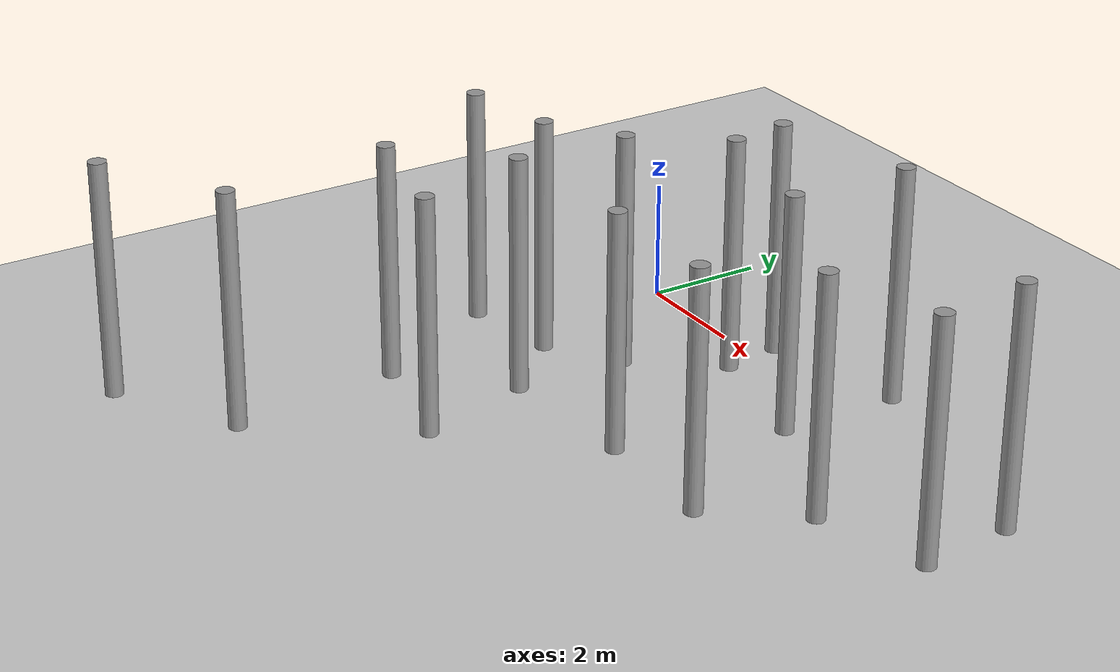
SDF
<sdf version="1.6">
 <world name="default">
  <model name="ground_plane">
   <static>1</static>
   <link name="link">
    <collision name="collision">
     <geometry><plane><normal>0 0 1</normal><size>100 100</size></plane></geometry>
     <surface><friction><ode><mu>100</mu><mu2>50</mu2></ode></friction></surface>
    </collision>
    <visual name="visual">
     <cast_shadows>0</cast_shadows>
     <geometry><plane><normal>0 0 1</normal><size>100 100</size></plane></geometry>
     <material>
      <script><uri>file://media/materials/scripts/gazebo.material</uri><name>Gazebo/Grey</name></script>
     </material>
    </visual>
   </link>
  </model>
  <model name="unit_cylinder_clone">
   <link name="link">
    <inertial>
     <mass>1000</mass>
     <inertia><ixx>145.833</ixx><ixy>0</ixy><ixz>0</ixz><iyy>145.833</iyy><iyz>0</iyz><izz>125</izz></inertia>
    </inertial>
    <visual name="visual">
     <geometry><cylinder><radius>0.15</radius><length>4</length></cylinder></geometry>
     <material>
      <script><name>Gazebo/Grey</name><uri>file://media/materials/scripts/gazebo.material</uri></script>
      <shader type="pixel"><normal_map>__default__</normal_map></shader>
      <ambient>0.3 0.3 0.3 1</ambient>
      <diffuse>0.7 0.7 0.7 1</diffuse>
      <specular>0.01 0.01 0.01 1</specular>
      <emissive>0 0 0 1</emissive>
     </material>
    </visual>
    <collision name="collision">
     <geometry><cylinder><radius>0.15</radius><length>4</length></cylinder></geometry>
     <surface>
      <friction>
       <ode><mu>1</mu><mu2>1</mu2><fdir1>0 0 0</fdir1><slip1>0</slip1><slip2>0</slip2></ode>
       <torsional>
        <coefficient>1</coefficient>
        <patch_radius>0</patch_radius>
        <surface_radius>0</surface_radius>
        <use_patch_radius>1</use_patch_radius>
        <ode><slip>0</slip></ode>
       </torsional>
      </friction>
      <bounce><restitution_coefficient>0</restitution_coefficient><threshold>1e+06</threshold></bounce>
      <contact>
       <collide_without_contact>0</collide_without_contact>
       <collide_without_contact_bitmask>1</collide_without_contact_bitmask>
       <collide_bitmask>1</collide_bitmask>
       <ode>
        <soft_cfm>0</soft_cfm>
        <soft_erp>0.2</soft_erp>
        <kp>1e+13</kp>
        <kd>1</kd>
        <max_vel>0.01</max_vel>
        <min_depth>0</min_depth>
       </ode>
       <bullet>
        <split_impulse>1</split_impulse>
        <split_impulse_penetration_threshold>-0.01</split_impulse_penetration_threshold>
        <soft_cfm>0</soft_cfm>
        <soft_erp>0.2</soft_erp>
        <kp>1e+13</kp>
        <kd>1</kd>
       </bullet>
      </contact>
     </surface>
    </collision>
   </link>
   <static>0</static>
   <pose>2.79096 0.434784 2 0 -0 0.001323</pose>
  </model>
  <model name="unit_cylinder_clone_26">
   <link name="link">
    <inertial>
     <mass>1000</mass>
     <inertia><ixx>145.833</ixx><ixy>0</ixy><ixz>0</ixz><iyy>145.833</iyy><iyz>0</iyz><izz>125</izz></inertia>
    </inertial>
    <visual name="visual">
     <geometry><cylinder><radius>0.15</radius><length>4</length></cylinder></geometry>
     <material>
      <script><name>Gazebo/Grey</name><uri>file://media/materials/scripts/gazebo.material</uri></script>
      <shader type="pixel"><normal_map>__default__</normal_map></shader>
      <ambient>0.3 0.3 0.3 1</ambient>
      <diffuse>0.7 0.7 0.7 1</diffuse>
      <specular>0.01 0.01 0.01 1</specular>
      <emissive>0 0 0 1</emissive>
     </material>
    </visual>
    <collision name="collision">
     <geometry><cylinder><radius>0.15</radius><length>4</length></cylinder></geometry>
     <surface>
      <friction>
       <ode><mu>1</mu><mu2>1</mu2><fdir1>0 0 0</fdir1><slip1>0</slip1><slip2>0</slip2></ode>
       <torsional>
        <coefficient>1</coefficient>
        <patch_radius>0</patch_radius>
        <surface_radius>0</surface_radius>
        <use_patch_radius>1</use_patch_radius>
        <ode><slip>0</slip></ode>
       </torsional>
      </friction>
      <bounce><restitution_coefficient>0</restitution_coefficient><threshold>1e+06</threshold></bounce>
      <contact>
       <collide_without_contact>0</collide_without_contact>
       <collide_without_contact_bitmask>1</collide_without_contact_bitmask>
       <collide_bitmask>1</collide_bitmask>
       <ode>
        <soft_cfm>0</soft_cfm>
        <soft_erp>0.2</soft_erp>
        <kp>1e+13</kp>
        <kd>1</kd>
        <max_vel>0.01</max_vel>
        <min_depth>0</min_depth>
       </ode>
       <bullet>
        <split_impulse>1</split_impulse>
        <split_impulse_penetration_threshold>-0.01</split_impulse_penetration_threshold>
        <soft_cfm>0</soft_cfm>
        <soft_erp>0.2</soft_erp>
        <kp>1e+13</kp>
        <kd>1</kd>
       </bullet>
      </contact>
     </surface>
    </collision>
   </link>
   <static>0</static>
   <pose>2.93394 -0.573973 1.99999 0 -0 0.001267</pose>
  </model>
  <model name="unit_cylinder_clone_27">
   <link name="link">
    <inertial>
     <mass>1000</mass>
     <inertia><ixx>145.833</ixx><ixy>0</ixy><ixz>0</ixz><iyy>145.833</iyy><iyz>0</iyz><izz>125</izz></inertia>
    </inertial>
    <visual name="visual">
     <geometry><cylinder><radius>0.15</radius><length>4</length></cylinder></geometry>
     <material>
      <script><name>Gazebo/Grey</name><uri>file://media/materials/scripts/gazebo.material</uri></script>
      <shader type="pixel"><normal_map>__default__</normal_map></shader>
      <ambient>0.3 0.3 0.3 1</ambient>
      <diffuse>0.7 0.7 0.7 1</diffuse>
      <specular>0.01 0.01 0.01 1</specular>
      <emissive>0 0 0 1</emissive>
     </material>
    </visual>
    <collision name="collision">
     <geometry><cylinder><radius>0.15</radius><length>4</length></cylinder></geometry>
     <surface>
      <friction>
       <ode><mu>1</mu><mu2>1</mu2><fdir1>0 0 0</fdir1><slip1>0</slip1><slip2>0</slip2></ode>
       <torsional>
        <coefficient>1</coefficient>
        <patch_radius>0</patch_radius>
        <surface_radius>0</surface_radius>
        <use_patch_radius>1</use_patch_radius>
        <ode><slip>0</slip></ode>
       </torsional>
      </friction>
      <bounce><restitution_coefficient>0</restitution_coefficient><threshold>1e+06</threshold></bounce>
      <contact>
       <collide_without_contact>0</collide_without_contact>
       <collide_without_contact_bitmask>1</collide_without_contact_bitmask>
       <collide_bitmask>1</collide_bitmask>
       <ode>
        <soft_cfm>0</soft_cfm>
        <soft_erp>0.2</soft_erp>
        <kp>1e+13</kp>
        <kd>1</kd>
        <max_vel>0.01</max_vel>
        <min_depth>0</min_depth>
       </ode>
       <bullet>
        <split_impulse>1</split_impulse>
        <split_impulse_penetration_threshold>-0.01</split_impulse_penetration_threshold>
        <soft_cfm>0</soft_cfm>
        <soft_erp>0.2</soft_erp>
        <kp>1e+13</kp>
        <kd>1</kd>
       </bullet>
      </contact>
     </surface>
    </collision>
   </link>
   <static>0</static>
   <pose>1.88864 -1.95951 1.99999 0 -0 0.001268</pose>
  </model>
  <model name="unit_cylinder_clone_30">
   <link name="link">
    <inertial>
     <mass>1000</mass>
     <inertia><ixx>145.833</ixx><ixy>0</ixy><ixz>0</ixz><iyy>145.833</iyy><iyz>0</iyz><izz>125</izz></inertia>
    </inertial>
    <visual name="visual">
     <geometry><cylinder><radius>0.15</radius><length>4</length></cylinder></geometry>
     <material>
      <script><name>Gazebo/Grey</name><uri>file://media/materials/scripts/gazebo.material</uri></script>
      <shader type="pixel"><normal_map>__default__</normal_map></shader>
      <ambient>0.3 0.3 0.3 1</ambient>
      <diffuse>0.7 0.7 0.7 1</diffuse>
      <specular>0.01 0.01 0.01 1</specular>
      <emissive>0 0 0 1</emissive>
     </material>
    </visual>
    <collision name="collision">
     <geometry><cylinder><radius>0.15</radius><length>4</length></cylinder></geometry>
     <surface>
      <friction>
       <ode><mu>1</mu><mu2>1</mu2><fdir1>0 0 0</fdir1><slip1>0</slip1><slip2>0</slip2></ode>
       <torsional>
        <coefficient>1</coefficient>
        <patch_radius>0</patch_radius>
        <surface_radius>0</surface_radius>
        <use_patch_radius>1</use_patch_radius>
        <ode><slip>0</slip></ode>
       </torsional>
      </friction>
      <bounce><restitution_coefficient>0</restitution_coefficient><threshold>1e+06</threshold></bounce>
      <contact>
       <collide_without_contact>0</collide_without_contact>
       <collide_without_contact_bitmask>1</collide_without_contact_bitmask>
       <collide_bitmask>1</collide_bitmask>
       <ode>
        <soft_cfm>0</soft_cfm>
        <soft_erp>0.2</soft_erp>
        <kp>1e+13</kp>
        <kd>1</kd>
        <max_vel>0.01</max_vel>
        <min_depth>0</min_depth>
       </ode>
       <bullet>
        <split_impulse>1</split_impulse>
        <split_impulse_penetration_threshold>-0.01</split_impulse_penetration_threshold>
        <soft_cfm>0</soft_cfm>
        <soft_erp>0.2</soft_erp>
        <kp>1e+13</kp>
        <kd>1</kd>
       </bullet>
      </contact>
     </surface>
    </collision>
   </link>
   <static>0</static>
   <pose>5.22441 0.959544 1.99999 0 -0 0.00141</pose>
  </model>
  <model name="unit_cylinder_clone_31">
   <link name="link">
    <inertial>
     <mass>1000</mass>
     <inertia><ixx>145.833</ixx><ixy>0</ixy><ixz>0</ixz><iyy>145.833</iyy><iyz>0</iyz><izz>125</izz></inertia>
    </inertial>
    <visual name="visual">
     <geometry><cylinder><radius>0.15</radius><length>4</length></cylinder></geometry>
     <material>
      <script><name>Gazebo/Grey</name><uri>file://media/materials/scripts/gazebo.material</uri></script>
      <shader type="pixel"><normal_map>__default__</normal_map></shader>
      <ambient>0.3 0.3 0.3 1</ambient>
      <diffuse>0.7 0.7 0.7 1</diffuse>
      <specular>0.01 0.01 0.01 1</specular>
      <emissive>0 0 0 1</emissive>
     </material>
    </visual>
    <collision name="collision">
     <geometry><cylinder><radius>0.15</radius><length>4</length></cylinder></geometry>
     <surface>
      <friction>
       <ode><mu>1</mu><mu2>1</mu2><fdir1>0 0 0</fdir1><slip1>0</slip1><slip2>0</slip2></ode>
       <torsional>
        <coefficient>1</coefficient>
        <patch_radius>0</patch_radius>
        <surface_radius>0</surface_radius>
        <use_patch_radius>1</use_patch_radius>
        <ode><slip>0</slip></ode>
       </torsional>
      </friction>
      <bounce><restitution_coefficient>0</restitution_coefficient><threshold>1e+06</threshold></bounce>
      <contact>
       <collide_without_contact>0</collide_without_contact>
       <collide_without_contact_bitmask>1</collide_without_contact_bitmask>
       <collide_bitmask>1</collide_bitmask>
       <ode>
        <soft_cfm>0</soft_cfm>
        <soft_erp>0.2</soft_erp>
        <kp>1e+13</kp>
        <kd>1</kd>
        <max_vel>0.01</max_vel>
        <min_depth>0</min_depth>
       </ode>
       <bullet>
        <split_impulse>1</split_impulse>
        <split_impulse_penetration_threshold>-0.01</split_impulse_penetration_threshold>
        <soft_cfm>0</soft_cfm>
        <soft_erp>0.2</soft_erp>
        <kp>1e+13</kp>
        <kd>1</kd>
       </bullet>
      </contact>
     </surface>
    </collision>
   </link>
   <static>0</static>
   <pose>5.17996 -1.11602 1.99999 0 -0 0.001346</pose>
  </model>
  <model name="unit_cylinder_clone_32">
   <link name="link">
    <inertial>
     <mass>1000</mass>
     <inertia><ixx>145.833</ixx><ixy>0</ixy><ixz>0</ixz><iyy>145.833</iyy><iyz>0</iyz><izz>125</izz></inertia>
    </inertial>
    <visual name="visual">
     <geometry><cylinder><radius>0.15</radius><length>4</length></cylinder></geometry>
     <material>
      <script><name>Gazebo/Grey</name><uri>file://media/materials/scripts/gazebo.material</uri></script>
      <shader type="pixel"><normal_map>__default__</normal_map></shader>
      <ambient>0.3 0.3 0.3 1</ambient>
      <diffuse>0.7 0.7 0.7 1</diffuse>
      <specular>0.01 0.01 0.01 1</specular>
      <emissive>0 0 0 1</emissive>
     </material>
    </visual>
    <collision name="collision">
     <geometry><cylinder><radius>0.15</radius><length>4</length></cylinder></geometry>
     <surface>
      <friction>
       <ode><mu>1</mu><mu2>1</mu2><fdir1>0 0 0</fdir1><slip1>0</slip1><slip2>0</slip2></ode>
       <torsional>
        <coefficient>1</coefficient>
        <patch_radius>0</patch_radius>
        <surface_radius>0</surface_radius>
        <use_patch_radius>1</use_patch_radius>
        <ode><slip>0</slip></ode>
       </torsional>
      </friction>
      <bounce><restitution_coefficient>0</restitution_coefficient><threshold>1e+06</threshold></bounce>
      <contact>
       <collide_without_contact>0</collide_without_contact>
       <collide_without_contact_bitmask>1</collide_without_contact_bitmask>
       <collide_bitmask>1</collide_bitmask>
       <ode>
        <soft_cfm>0</soft_cfm>
        <soft_erp>0.2</soft_erp>
        <kp>1e+13</kp>
        <kd>1</kd>
        <max_vel>0.01</max_vel>
        <min_depth>0</min_depth>
       </ode>
       <bullet>
        <split_impulse>1</split_impulse>
        <split_impulse_penetration_threshold>-0.01</split_impulse_penetration_threshold>
        <soft_cfm>0</soft_cfm>
        <soft_erp>0.2</soft_erp>
        <kp>1e+13</kp>
        <kd>1</kd>
       </bullet>
      </contact>
     </surface>
    </collision>
   </link>
   <static>0</static>
   <pose>7.61978 -2.35231 2 0 -0 0.001317</pose>
  </model>
  <model name="unit_cylinder_clone_33">
   <link name="link">
    <inertial>
     <mass>1000</mass>
     <inertia><ixx>145.833</ixx><ixy>0</ixy><ixz>0</ixz><iyy>145.833</iyy><iyz>0</iyz><izz>125</izz></inertia>
    </inertial>
    <visual name="visual">
     <geometry><cylinder><radius>0.15</radius><length>4</length></cylinder></geometry>
     <material>
      <script><name>Gazebo/Grey</name><uri>file://media/materials/scripts/gazebo.material</uri></script>
      <shader type="pixel"><normal_map>__default__</normal_map></shader>
      <ambient>0.3 0.3 0.3 1</ambient>
      <diffuse>0.7 0.7 0.7 1</diffuse>
      <specular>0.01 0.01 0.01 1</specular>
      <emissive>0 0 0 1</emissive>
     </material>
    </visual>
    <collision name="collision">
     <geometry><cylinder><radius>0.15</radius><length>4</length></cylinder></geometry>
     <surface>
      <friction>
       <ode><mu>1</mu><mu2>1</mu2><fdir1>0 0 0</fdir1><slip1>0</slip1><slip2>0</slip2></ode>
       <torsional>
        <coefficient>1</coefficient>
        <patch_radius>0</patch_radius>
        <surface_radius>0</surface_radius>
        <use_patch_radius>1</use_patch_radius>
        <ode><slip>0</slip></ode>
       </torsional>
      </friction>
      <bounce><restitution_coefficient>0</restitution_coefficient><threshold>1e+06</threshold></bounce>
      <contact>
       <collide_without_contact>0</collide_without_contact>
       <collide_without_contact_bitmask>1</collide_without_contact_bitmask>
       <collide_bitmask>1</collide_bitmask>
       <ode>
        <soft_cfm>0</soft_cfm>
        <soft_erp>0.2</soft_erp>
        <kp>1e+13</kp>
        <kd>1</kd>
        <max_vel>0.01</max_vel>
        <min_depth>0</min_depth>
       </ode>
       <bullet>
        <split_impulse>1</split_impulse>
        <split_impulse_penetration_threshold>-0.01</split_impulse_penetration_threshold>
        <soft_cfm>0</soft_cfm>
        <soft_erp>0.2</soft_erp>
        <kp>1e+13</kp>
        <kd>1</kd>
       </bullet>
      </contact>
     </surface>
    </collision>
   </link>
   <static>0</static>
   <pose>9.32443 -0.210947 2 0 -0 0.001304</pose>
  </model>
  <model name="unit_cylinder_clone_34">
   <link name="link">
    <inertial>
     <mass>1000</mass>
     <inertia><ixx>145.833</ixx><ixy>0</ixy><ixz>0</ixz><iyy>145.833</iyy><iyz>0</iyz><izz>125</izz></inertia>
    </inertial>
    <visual name="visual">
     <geometry><cylinder><radius>0.15</radius><length>4</length></cylinder></geometry>
     <material>
      <script><name>Gazebo/Grey</name><uri>file://media/materials/scripts/gazebo.material</uri></script>
      <shader type="pixel"><normal_map>__default__</normal_map></shader>
      <ambient>0.3 0.3 0.3 1</ambient>
      <diffuse>0.7 0.7 0.7 1</diffuse>
      <specular>0.01 0.01 0.01 1</specular>
      <emissive>0 0 0 1</emissive>
     </material>
    </visual>
    <collision name="collision">
     <geometry><cylinder><radius>0.15</radius><length>4</length></cylinder></geometry>
     <surface>
      <friction>
       <ode><mu>1</mu><mu2>1</mu2><fdir1>0 0 0</fdir1><slip1>0</slip1><slip2>0</slip2></ode>
       <torsional>
        <coefficient>1</coefficient>
        <patch_radius>0</patch_radius>
        <surface_radius>0</surface_radius>
        <use_patch_radius>1</use_patch_radius>
        <ode><slip>0</slip></ode>
       </torsional>
      </friction>
      <bounce><restitution_coefficient>0</restitution_coefficient><threshold>1e+06</threshold></bounce>
      <contact>
       <collide_without_contact>0</collide_without_contact>
       <collide_without_contact_bitmask>1</collide_without_contact_bitmask>
       <collide_bitmask>1</collide_bitmask>
       <ode>
        <soft_cfm>0</soft_cfm>
        <soft_erp>0.2</soft_erp>
        <kp>1e+13</kp>
        <kd>1</kd>
        <max_vel>0.01</max_vel>
        <min_depth>0</min_depth>
       </ode>
       <bullet>
        <split_impulse>1</split_impulse>
        <split_impulse_penetration_threshold>-0.01</split_impulse_penetration_threshold>
        <soft_cfm>0</soft_cfm>
        <soft_erp>0.2</soft_erp>
        <kp>1e+13</kp>
        <kd>1</kd>
       </bullet>
      </contact>
     </surface>
    </collision>
   </link>
   <static>0</static>
   <pose>9.51377 -1.83258 2 0 -0 0.001461</pose>
  </model>
  <model name="unit_cylinder_clone_36">
   <link name="link">
    <inertial>
     <mass>1000</mass>
     <inertia><ixx>145.833</ixx><ixy>0</ixy><ixz>0</ixz><iyy>145.833</iyy><iyz>0</iyz><izz>125</izz></inertia>
    </inertial>
    <visual name="visual">
     <geometry><cylinder><radius>0.15</radius><length>4</length></cylinder></geometry>
     <material>
      <script><name>Gazebo/Grey</name><uri>file://media/materials/scripts/gazebo.material</uri></script>
      <shader type="pixel"><normal_map>__default__</normal_map></shader>
      <ambient>0.3 0.3 0.3 1</ambient>
      <diffuse>0.7 0.7 0.7 1</diffuse>
      <specular>0.01 0.01 0.01 1</specular>
      <emissive>0 0 0 1</emissive>
     </material>
    </visual>
    <collision name="collision">
     <geometry><cylinder><radius>0.15</radius><length>4</length></cylinder></geometry>
     <surface>
      <friction>
       <ode><mu>1</mu><mu2>1</mu2><fdir1>0 0 0</fdir1><slip1>0</slip1><slip2>0</slip2></ode>
       <torsional>
        <coefficient>1</coefficient>
        <patch_radius>0</patch_radius>
        <surface_radius>0</surface_radius>
        <use_patch_radius>1</use_patch_radius>
        <ode><slip>0</slip></ode>
       </torsional>
      </friction>
      <bounce><restitution_coefficient>0</restitution_coefficient><threshold>1e+06</threshold></bounce>
      <contact>
       <collide_without_contact>0</collide_without_contact>
       <collide_without_contact_bitmask>1</collide_without_contact_bitmask>
       <collide_bitmask>1</collide_bitmask>
       <ode>
        <soft_cfm>0</soft_cfm>
        <soft_erp>0.2</soft_erp>
        <kp>1e+13</kp>
        <kd>1</kd>
        <max_vel>0.01</max_vel>
        <min_depth>0</min_depth>
       </ode>
       <bullet>
        <split_impulse>1</split_impulse>
        <split_impulse_penetration_threshold>-0.01</split_impulse_penetration_threshold>
        <soft_cfm>0</soft_cfm>
        <soft_erp>0.2</soft_erp>
        <kp>1e+13</kp>
        <kd>1</kd>
       </bullet>
      </contact>
     </surface>
    </collision>
   </link>
   <static>0</static>
   <pose>4.30521 -3.6942 1.99999 0 -0 0.001586</pose>
  </model>
  <model name="unit_cylinder_clone_38">
   <link name="link">
    <inertial>
     <mass>1000</mass>
     <inertia><ixx>145.833</ixx><ixy>0</ixy><ixz>0</ixz><iyy>145.833</iyy><iyz>0</iyz><izz>125</izz></inertia>
    </inertial>
    <visual name="visual">
     <geometry><cylinder><radius>0.15</radius><length>4</length></cylinder></geometry>
     <material>
      <script><name>Gazebo/Grey</name><uri>file://media/materials/scripts/gazebo.material</uri></script>
      <shader type="pixel"><normal_map>__default__</normal_map></shader>
      <ambient>0.3 0.3 0.3 1</ambient>
      <diffuse>0.7 0.7 0.7 1</diffuse>
      <specular>0.01 0.01 0.01 1</specular>
      <emissive>0 0 0 1</emissive>
     </material>
    </visual>
    <collision name="collision">
     <geometry><cylinder><radius>0.15</radius><length>4</length></cylinder></geometry>
     <surface>
      <friction>
       <ode><mu>1</mu><mu2>1</mu2><fdir1>0 0 0</fdir1><slip1>0</slip1><slip2>0</slip2></ode>
       <torsional>
        <coefficient>1</coefficient>
        <patch_radius>0</patch_radius>
        <surface_radius>0</surface_radius>
        <use_patch_radius>1</use_patch_radius>
        <ode><slip>0</slip></ode>
       </torsional>
      </friction>
      <bounce><restitution_coefficient>0</restitution_coefficient><threshold>1e+06</threshold></bounce>
      <contact>
       <collide_without_contact>0</collide_without_contact>
       <collide_without_contact_bitmask>1</collide_without_contact_bitmask>
       <collide_bitmask>1</collide_bitmask>
       <ode>
        <soft_cfm>0</soft_cfm>
        <soft_erp>0.2</soft_erp>
        <kp>1e+13</kp>
        <kd>1</kd>
        <max_vel>0.01</max_vel>
        <min_depth>0</min_depth>
       </ode>
       <bullet>
        <split_impulse>1</split_impulse>
        <split_impulse_penetration_threshold>-0.01</split_impulse_penetration_threshold>
        <soft_cfm>0</soft_cfm>
        <soft_erp>0.2</soft_erp>
        <kp>1e+13</kp>
        <kd>1</kd>
       </bullet>
      </contact>
     </surface>
    </collision>
   </link>
   <static>0</static>
   <pose>0.264948 -5.35666 2 0 -0 0.001267</pose>
  </model>
  <model name="unit_cylinder_clone_40">
   <link name="link">
    <inertial>
     <mass>1000</mass>
     <inertia><ixx>145.833</ixx><ixy>0</ixy><ixz>0</ixz><iyy>145.833</iyy><iyz>0</iyz><izz>125</izz></inertia>
    </inertial>
    <visual name="visual">
     <geometry><cylinder><radius>0.15</radius><length>4</length></cylinder></geometry>
     <material>
      <script><name>Gazebo/Grey</name><uri>file://media/materials/scripts/gazebo.material</uri></script>
      <shader type="pixel"><normal_map>__default__</normal_map></shader>
      <ambient>0.3 0.3 0.3 1</ambient>
      <diffuse>0.7 0.7 0.7 1</diffuse>
      <specular>0.01 0.01 0.01 1</specular>
      <emissive>0 0 0 1</emissive>
     </material>
    </visual>
    <collision name="collision">
     <geometry><cylinder><radius>0.15</radius><length>4</length></cylinder></geometry>
     <surface>
      <friction>
       <ode><mu>1</mu><mu2>1</mu2><fdir1>0 0 0</fdir1><slip1>0</slip1><slip2>0</slip2></ode>
       <torsional>
        <coefficient>1</coefficient>
        <patch_radius>0</patch_radius>
        <surface_radius>0</surface_radius>
        <use_patch_radius>1</use_patch_radius>
        <ode><slip>0</slip></ode>
       </torsional>
      </friction>
      <bounce><restitution_coefficient>0</restitution_coefficient><threshold>1e+06</threshold></bounce>
      <contact>
       <collide_without_contact>0</collide_without_contact>
       <collide_without_contact_bitmask>1</collide_without_contact_bitmask>
       <collide_bitmask>1</collide_bitmask>
       <ode>
        <soft_cfm>0</soft_cfm>
        <soft_erp>0.2</soft_erp>
        <kp>1e+13</kp>
        <kd>1</kd>
        <max_vel>0.01</max_vel>
        <min_depth>0</min_depth>
       </ode>
       <bullet>
        <split_impulse>1</split_impulse>
        <split_impulse_penetration_threshold>-0.01</split_impulse_penetration_threshold>
        <soft_cfm>0</soft_cfm>
        <soft_erp>0.2</soft_erp>
        <kp>1e+13</kp>
        <kd>1</kd>
       </bullet>
      </contact>
     </surface>
    </collision>
   </link>
   <static>0</static>
   <pose>0.580109 -8.26422 2 0 -0 0.001375</pose>
  </model>
  <model name="unit_cylinder_clone_41">
   <link name="link">
    <inertial>
     <mass>1000</mass>
     <inertia><ixx>145.833</ixx><ixy>0</ixy><ixz>0</ixz><iyy>145.833</iyy><iyz>0</iyz><izz>125</izz></inertia>
    </inertial>
    <visual name="visual">
     <geometry><cylinder><radius>0.15</radius><length>4</length></cylinder></geometry>
     <material>
      <script><name>Gazebo/Grey</name><uri>file://media/materials/scripts/gazebo.material</uri></script>
      <shader type="pixel"><normal_map>__default__</normal_map></shader>
      <ambient>0.3 0.3 0.3 1</ambient>
      <diffuse>0.7 0.7 0.7 1</diffuse>
      <specular>0.01 0.01 0.01 1</specular>
      <emissive>0 0 0 1</emissive>
     </material>
    </visual>
    <collision name="collision">
     <geometry><cylinder><radius>0.15</radius><length>4</length></cylinder></geometry>
     <surface>
      <friction>
       <ode><mu>1</mu><mu2>1</mu2><fdir1>0 0 0</fdir1><slip1>0</slip1><slip2>0</slip2></ode>
       <torsional>
        <coefficient>1</coefficient>
        <patch_radius>0</patch_radius>
        <surface_radius>0</surface_radius>
        <use_patch_radius>1</use_patch_radius>
        <ode><slip>0</slip></ode>
       </torsional>
      </friction>
      <bounce><restitution_coefficient>0</restitution_coefficient><threshold>1e+06</threshold></bounce>
      <contact>
       <collide_without_contact>0</collide_without_contact>
       <collide_without_contact_bitmask>1</collide_without_contact_bitmask>
       <collide_bitmask>1</collide_bitmask>
       <ode>
        <soft_cfm>0</soft_cfm>
        <soft_erp>0.2</soft_erp>
        <kp>1e+13</kp>
        <kd>1</kd>
        <max_vel>0.01</max_vel>
        <min_depth>0</min_depth>
       </ode>
       <bullet>
        <split_impulse>1</split_impulse>
        <split_impulse_penetration_threshold>-0.01</split_impulse_penetration_threshold>
        <soft_cfm>0</soft_cfm>
        <soft_erp>0.2</soft_erp>
        <kp>1e+13</kp>
        <kd>1</kd>
       </bullet>
      </contact>
     </surface>
    </collision>
   </link>
   <static>0</static>
   <pose>-1.47468 -9.43806 2 0 -0 0.001331</pose>
  </model>
  <model name="unit_cylinder_clone_42">
   <link name="link">
    <inertial>
     <mass>1000</mass>
     <inertia><ixx>145.833</ixx><ixy>0</ixy><ixz>0</ixz><iyy>145.833</iyy><iyz>0</iyz><izz>125</izz></inertia>
    </inertial>
    <visual name="visual">
     <geometry><cylinder><radius>0.15</radius><length>4</length></cylinder></geometry>
     <material>
      <script><name>Gazebo/Grey</name><uri>file://media/materials/scripts/gazebo.material</uri></script>
      <shader type="pixel"><normal_map>__default__</normal_map></shader>
      <ambient>0.3 0.3 0.3 1</ambient>
      <diffuse>0.7 0.7 0.7 1</diffuse>
      <specular>0.01 0.01 0.01 1</specular>
      <emissive>0 0 0 1</emissive>
     </material>
    </visual>
    <collision name="collision">
     <geometry><cylinder><radius>0.15</radius><length>4</length></cylinder></geometry>
     <surface>
      <friction>
       <ode><mu>1</mu><mu2>1</mu2><fdir1>0 0 0</fdir1><slip1>0</slip1><slip2>0</slip2></ode>
       <torsional>
        <coefficient>1</coefficient>
        <patch_radius>0</patch_radius>
        <surface_radius>0</surface_radius>
        <use_patch_radius>1</use_patch_radius>
        <ode><slip>0</slip></ode>
       </torsional>
      </friction>
      <bounce><restitution_coefficient>0</restitution_coefficient><threshold>1e+06</threshold></bounce>
      <contact>
       <collide_without_contact>0</collide_without_contact>
       <collide_without_contact_bitmask>1</collide_without_contact_bitmask>
       <collide_bitmask>1</collide_bitmask>
       <ode>
        <soft_cfm>0</soft_cfm>
        <soft_erp>0.2</soft_erp>
        <kp>1e+13</kp>
        <kd>1</kd>
        <max_vel>0.01</max_vel>
        <min_depth>0</min_depth>
       </ode>
       <bullet>
        <split_impulse>1</split_impulse>
        <split_impulse_penetration_threshold>-0.01</split_impulse_penetration_threshold>
        <soft_cfm>0</soft_cfm>
        <soft_erp>0.2</soft_erp>
        <kp>1e+13</kp>
        <kd>1</kd>
       </bullet>
      </contact>
     </surface>
    </collision>
   </link>
   <static>0</static>
   <pose>2.34072 -5.83831 1.99999 0 -0 0.000928</pose>
  </model>
  <model name="unit_cylinder_clone_44">
   <link name="link">
    <inertial>
     <mass>1000</mass>
     <inertia><ixx>145.833</ixx><ixy>0</ixy><ixz>0</ixz><iyy>145.833</iyy><iyz>0</iyz><izz>125</izz></inertia>
    </inertial>
    <visual name="visual">
     <geometry><cylinder><radius>0.15</radius><length>4</length></cylinder></geometry>
     <material>
      <script><name>Gazebo/Grey</name><uri>file://media/materials/scripts/gazebo.material</uri></script>
      <shader type="pixel"><normal_map>__default__</normal_map></shader>
      <ambient>0.3 0.3 0.3 1</ambient>
      <diffuse>0.7 0.7 0.7 1</diffuse>
      <specular>0.01 0.01 0.01 1</specular>
      <emissive>0 0 0 1</emissive>
     </material>
    </visual>
    <collision name="collision">
     <geometry><cylinder><radius>0.15</radius><length>4</length></cylinder></geometry>
     <surface>
      <friction>
       <ode><mu>1</mu><mu2>1</mu2><fdir1>0 0 0</fdir1><slip1>0</slip1><slip2>0</slip2></ode>
       <torsional>
        <coefficient>1</coefficient>
        <patch_radius>0</patch_radius>
        <surface_radius>0</surface_radius>
        <use_patch_radius>1</use_patch_radius>
        <ode><slip>0</slip></ode>
       </torsional>
      </friction>
      <bounce><restitution_coefficient>0</restitution_coefficient><threshold>1e+06</threshold></bounce>
      <contact>
       <collide_without_contact>0</collide_without_contact>
       <collide_without_contact_bitmask>1</collide_without_contact_bitmask>
       <collide_bitmask>1</collide_bitmask>
       <ode>
        <soft_cfm>0</soft_cfm>
        <soft_erp>0.2</soft_erp>
        <kp>1e+13</kp>
        <kd>1</kd>
        <max_vel>0.01</max_vel>
        <min_depth>0</min_depth>
       </ode>
       <bullet>
        <split_impulse>1</split_impulse>
        <split_impulse_penetration_threshold>-0.01</split_impulse_penetration_threshold>
        <soft_cfm>0</soft_cfm>
        <soft_erp>0.2</soft_erp>
        <kp>1e+13</kp>
        <kd>1</kd>
       </bullet>
      </contact>
     </surface>
    </collision>
   </link>
   <static>0</static>
   <pose>0.714201 -2.7358 2 0 -0 0.001305</pose>
  </model>
  <model name="unit_cylinder_clone_45">
   <link name="link">
    <inertial>
     <mass>1000</mass>
     <inertia><ixx>145.833</ixx><ixy>0</ixy><ixz>0</ixz><iyy>145.833</iyy><iyz>0</iyz><izz>125</izz></inertia>
    </inertial>
    <visual name="visual">
     <geometry><cylinder><radius>0.15</radius><length>4</length></cylinder></geometry>
     <material>
      <script><name>Gazebo/Grey</name><uri>file://media/materials/scripts/gazebo.material</uri></script>
      <shader type="pixel"><normal_map>__default__</normal_map></shader>
      <ambient>0.3 0.3 0.3 1</ambient>
      <diffuse>0.7 0.7 0.7 1</diffuse>
      <specular>0.01 0.01 0.01 1</specular>
      <emissive>0 0 0 1</emissive>
     </material>
    </visual>
    <collision name="collision">
     <geometry><cylinder><radius>0.15</radius><length>4</length></cylinder></geometry>
     <surface>
      <friction>
       <ode><mu>1</mu><mu2>1</mu2><fdir1>0 0 0</fdir1><slip1>0</slip1><slip2>0</slip2></ode>
       <torsional>
        <coefficient>1</coefficient>
        <patch_radius>0</patch_radius>
        <surface_radius>0</surface_radius>
        <use_patch_radius>1</use_patch_radius>
        <ode><slip>0</slip></ode>
       </torsional>
      </friction>
      <bounce><restitution_coefficient>0</restitution_coefficient><threshold>1e+06</threshold></bounce>
      <contact>
       <collide_without_contact>0</collide_without_contact>
       <collide_without_contact_bitmask>1</collide_without_contact_bitmask>
       <collide_bitmask>1</collide_bitmask>
       <ode>
        <soft_cfm>0</soft_cfm>
        <soft_erp>0.2</soft_erp>
        <kp>1e+13</kp>
        <kd>1</kd>
        <max_vel>0.01</max_vel>
        <min_depth>0</min_depth>
       </ode>
       <bullet>
        <split_impulse>1</split_impulse>
        <split_impulse_penetration_threshold>-0.01</split_impulse_penetration_threshold>
        <soft_cfm>0</soft_cfm>
        <soft_erp>0.2</soft_erp>
        <kp>1e+13</kp>
        <kd>1</kd>
       </bullet>
      </contact>
     </surface>
    </collision>
   </link>
   <static>0</static>
   <pose>1.78336 -3.86869 1.99999 0 -0 0.001098</pose>
  </model>
  <model name="unit_cylinder_clone_8_clone_0">
   <link name="link">
    <inertial>
     <mass>1000</mass>
     <inertia><ixx>145.833</ixx><ixy>0</ixy><ixz>0</ixz><iyy>145.833</iyy><iyz>0</iyz><izz>125</izz></inertia>
    </inertial>
    <visual name="visual">
     <geometry><cylinder><radius>0.15</radius><length>4</length></cylinder></geometry>
     <material>
      <script><name>Gazebo/Grey</name><uri>file://media/materials/scripts/gazebo.material</uri></script>
      <shader type="pixel"><normal_map>__default__</normal_map></shader>
      <ambient>0.3 0.3 0.3 1</ambient>
      <diffuse>0.7 0.7 0.7 1</diffuse>
      <specular>0.01 0.01 0.01 1</specular>
      <emissive>0 0 0 1</emissive>
     </material>
    </visual>
    <collision name="collision">
     <geometry><cylinder><radius>0.15</radius><length>4</length></cylinder></geometry>
     <surface>
      <friction>
       <ode><mu>1</mu><mu2>1</mu2><fdir1>0 0 0</fdir1><slip1>0</slip1><slip2>0</slip2></ode>
       <torsional>
        <coefficient>1</coefficient>
        <patch_radius>0</patch_radius>
        <surface_radius>0</surface_radius>
        <use_patch_radius>1</use_patch_radius>
        <ode><slip>0</slip></ode>
       </torsional>
      </friction>
      <bounce><restitution_coefficient>0</restitution_coefficient><threshold>1e+06</threshold></bounce>
      <contact>
       <collide_without_contact>0</collide_without_contact>
       <collide_without_contact_bitmask>1</collide_without_contact_bitmask>
       <collide_bitmask>1</collide_bitmask>
       <ode>
        <soft_cfm>0</soft_cfm>
        <soft_erp>0.2</soft_erp>
        <kp>1e+13</kp>
        <kd>1</kd>
        <max_vel>0.01</max_vel>
        <min_depth>0</min_depth>
       </ode>
       <bullet>
        <split_impulse>1</split_impulse>
        <split_impulse_penetration_threshold>-0.01</split_impulse_penetration_threshold>
        <soft_cfm>0</soft_cfm>
        <soft_erp>0.2</soft_erp>
        <kp>1e+13</kp>
        <kd>1</kd>
       </bullet>
      </contact>
     </surface>
    </collision>
   </link>
   <static>0</static>
   <pose>-0.938926 -3.02069 1.99999 0 -0 0.001306</pose>
  </model>
  <model name="unit_cylinder_clone_0_clone">
   <link name="link">
    <inertial>
     <mass>1000</mass>
     <inertia><ixx>145.833</ixx><ixy>0</ixy><ixz>0</ixz><iyy>145.833</iyy><iyz>0</iyz><izz>125</izz></inertia>
    </inertial>
    <visual name="visual">
     <geometry><cylinder><radius>0.15</radius><length>4</length></cylinder></geometry>
     <material>
      <script><name>Gazebo/Grey</name><uri>file://media/materials/scripts/gazebo.material</uri></script>
      <shader type="pixel"><normal_map>__default__</normal_map></shader>
      <ambient>0.3 0.3 0.3 1</ambient>
      <diffuse>0.7 0.7 0.7 1</diffuse>
      <specular>0.01 0.01 0.01 1</specular>
      <emissive>0 0 0 1</emissive>
     </material>
    </visual>
    <collision name="collision">
     <geometry><cylinder><radius>0.15</radius><length>4</length></cylinder></geometry>
     <surface>
      <friction>
       <ode><mu>1</mu><mu2>1</mu2><fdir1>0 0 0</fdir1><slip1>0</slip1><slip2>0</slip2></ode>
       <torsional>
        <coefficient>1</coefficient>
        <patch_radius>0</patch_radius>
        <surface_radius>0</surface_radius>
        <use_patch_radius>1</use_patch_radius>
        <ode><slip>0</slip></ode>
       </torsional>
      </friction>
      <bounce><restitution_coefficient>0</restitution_coefficient><threshold>1e+06</threshold></bounce>
      <contact>
       <collide_without_contact>0</collide_without_contact>
       <collide_without_contact_bitmask>1</collide_without_contact_bitmask>
       <collide_bitmask>1</collide_bitmask>
       <ode>
        <soft_cfm>0</soft_cfm>
        <soft_erp>0.2</soft_erp>
        <kp>1e+13</kp>
        <kd>1</kd>
        <max_vel>0.01</max_vel>
        <min_depth>0</min_depth>
       </ode>
       <bullet>
        <split_impulse>1</split_impulse>
        <split_impulse_penetration_threshold>-0.01</split_impulse_penetration_threshold>
        <soft_cfm>0</soft_cfm>
        <soft_erp>0.2</soft_erp>
        <kp>1e+13</kp>
        <kd>1</kd>
       </bullet>
      </contact>
     </surface>
    </collision>
   </link>
   <static>0</static>
   <pose>6.50513 -3.7596 1.99999 0 -0 0.001435</pose>
  </model>
 </world>
</sdf>
